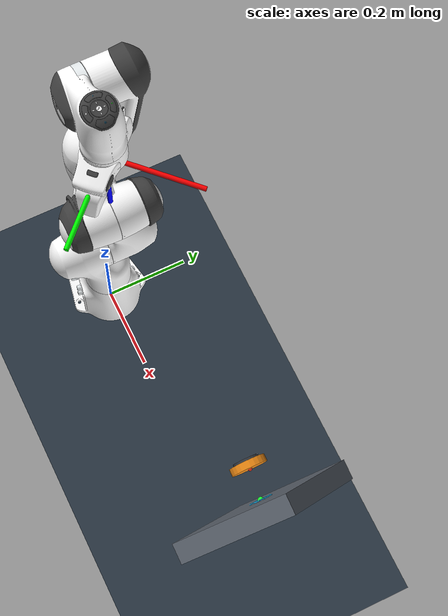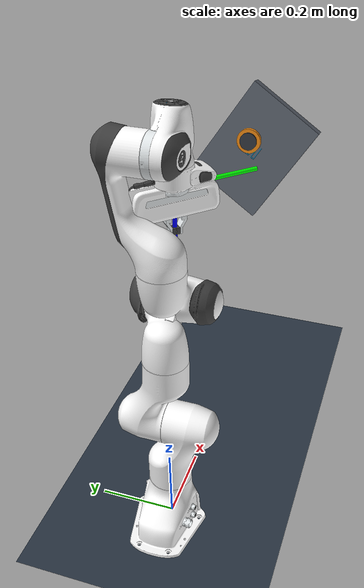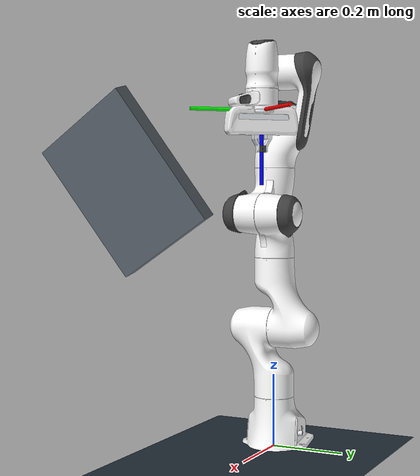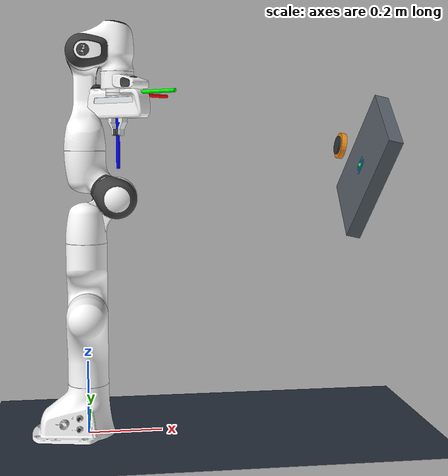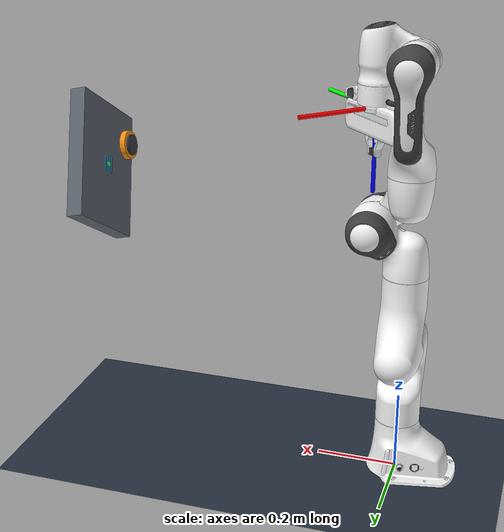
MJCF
<mujoco model="panda polishing scene">
  <include file="panda_pos.xml"/>

  <statistic center="0.45 0 0.55" extent="1.15"/>

  <visual>
    <headlight diffuse="0.7 0.7 0.7" ambient="0.35 0.35 0.35" specular="0.1 0.1 0.1"/>
    <rgba haze="0.15 0.25 0.35 1"/>
    <global azimuth="135" elevation="-18"/>
  </visual>

  <asset>
    <texture type="skybox" builtin="gradient" rgb1="0.35 0.5 0.7" rgb2="0.02 0.02 0.04"
             width="512" height="3072"/>
    <texture type="2d" name="polishing_ground" builtin="checker" mark="edge"
             rgb1="0.22 0.28 0.34" rgb2="0.10 0.13 0.17" markrgb="0.75 0.75 0.75"
             width="300" height="300"/>
    <material name="polishing_ground" texture="polishing_ground" texuniform="true"
              texrepeat="5 5" reflectance="0.15"/>
    <material name="workpiece_material" rgba="0.36 0.39 0.43 1" specular="0.4" shininess="0.35"/>
    <material name="pad_material" rgba="0.95 0.55 0.08 1" specular="0.15" shininess="0.2"/>
  </asset>

  <worldbody>
    <light pos="0.4 -0.4 1.6" dir="0.1 0.2 -1" directional="true"/>
    <geom name="floor" size="0 0 0.05" type="plane" material="polishing_ground"/>

    <!-- The workpiece local +Z axis is aligned with the settled tool axis.
         Its near face starts about 35 mm in front of the polishing pad. -->
    <body name="workpiece" pos="0.778535806 0.000004654 0.728871639"
          quat="0.603261195 0.218702044 0.746350103 0.176654665">
      <geom name="workpiece_geom" type="box" size="0.16 0.12 0.02"
            material="workpiece_material" friction="0.2 0.02 0.002"
            solref="0.004 1" solimp="0.95 0.99 0.001"/>
      <site name="polishing_center" pos="0 0 -0.0205" size="0.006"
            rgba="0.1 1 0.2 0.9" group="2"/>
      <!-- Default 40 x 30 mm serpentine polishing path.  These geoms are
           visual only; the controller generates the same path numerically. -->
      <geom name="trajectory_row_0" type="capsule" size="0.0012"
            fromto="-0.02 -0.015 -0.021 0.02 -0.015 -0.021"
            rgba="0.15 0.75 1 0.9" contype="0" conaffinity="0" group="2"/>
      <geom name="trajectory_turn_0" type="capsule" size="0.0012"
            fromto="0.02 -0.015 -0.021 0.02 -0.005 -0.021"
            rgba="0.15 0.75 1 0.9" contype="0" conaffinity="0" group="2"/>
      <geom name="trajectory_row_1" type="capsule" size="0.0012"
            fromto="0.02 -0.005 -0.021 -0.02 -0.005 -0.021"
            rgba="0.15 0.75 1 0.9" contype="0" conaffinity="0" group="2"/>
      <geom name="trajectory_turn_1" type="capsule" size="0.0012"
            fromto="-0.02 -0.005 -0.021 -0.02 0.005 -0.021"
            rgba="0.15 0.75 1 0.9" contype="0" conaffinity="0" group="2"/>
      <geom name="trajectory_row_2" type="capsule" size="0.0012"
            fromto="-0.02 0.005 -0.021 0.02 0.005 -0.021"
            rgba="0.15 0.75 1 0.9" contype="0" conaffinity="0" group="2"/>
      <geom name="trajectory_turn_2" type="capsule" size="0.0012"
            fromto="0.02 0.005 -0.021 0.02 0.015 -0.021"
            rgba="0.15 0.75 1 0.9" contype="0" conaffinity="0" group="2"/>
      <geom name="trajectory_row_3" type="capsule" size="0.0012"
            fromto="0.02 0.015 -0.021 -0.02 0.015 -0.021"
            rgba="0.15 0.75 1 0.9" contype="0" conaffinity="0" group="2"/>
    </body>

    <body name="polishing_tool" pos="0.688796086 0 0.788705734"
          quat="0.62880214 0.21269708 0.72478743 0.18452911">
      <freejoint name="polishing_tool_freejoint"/>
      <inertial pos="0 0 0.008" mass="0.22" diaginertia="0.00014 0.00014 0.00020"/>
      <geom name="tool_hub" type="cylinder" pos="0 0 0.005" size="0.025 0.005"
            rgba="0.20 0.22 0.25 1" contype="0" conaffinity="0"/>
      <geom name="polishing_pad" type="cylinder" pos="0 0 0.012" size="0.035 0.007"
            material="pad_material" friction="0.2 0.03 0.003"
            solref="0.015 1" solimp="0.90 0.97 0.003"/>
      <site name="pad_contact_center" pos="0 0 0.0195" size="0.004"
            rgba="1 0.2 0.1 0.9" group="2"/>
    </body>
  </worldbody>

  <equality>
    <weld name="tool_to_tcp" body1="polishing_tool" body2="ee_center_body"
          relpose="0 0 0 1 0 0 0"
          solref="0.002 1" solimp="0.99 0.999 0.0001"/>
  </equality>

  <keyframe>
    <key name="polishing_home"
         qpos="0 0 0 -1.57079 0 3.0 -1.7853 0.04 0.04 0.688796086 0 0.788705734 0.62880214 0.21269708 0.72478743 0.18452911"
         ctrl="0 0 0 -1.57079 0 1.57079 -0.7853 255"/>
  </keyframe>
</mujoco>

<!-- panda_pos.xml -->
<mujoco model="panda">
  <compiler angle="radian" meshdir="assets" autolimits="true"/>

  <option integrator="implicitfast"/>

  <default>
    <default class="panda">
      <material specular="0.5" shininess="0.25"/>
      <joint armature="0.1" damping="1" axis="0 0 1" range="-2.8973 2.8973"/>
      <general dyntype="none" biastype="affine" ctrlrange="-2.8973 2.8973" forcerange="-87 87"/>
      <default class="finger">
        <joint axis="0 1 0" type="slide" range="0 0.04"/>
      </default>

      <default class="visual">
        <geom type="mesh" contype="0" conaffinity="0" group="2"/>
      </default>
      <default class="collision">
        <geom type="mesh" group="3"/>
        <default class="fingertip_pad_collision_1">
          <geom type="box" size="0.0085 0.004 0.0085" pos="0 0.0055 0.0445"/>
        </default>
        <default class="fingertip_pad_collision_2">
          <geom type="box" size="0.003 0.002 0.003" pos="0.0055 0.002 0.05"/>
        </default>
        <default class="fingertip_pad_collision_3">
          <geom type="box" size="0.003 0.002 0.003" pos="-0.0055 0.002 0.05"/>
        </default>
        <default class="fingertip_pad_collision_4">
          <geom type="box" size="0.003 0.002 0.0035" pos="0.0055 0.002 0.0395"/>
        </default>
        <default class="fingertip_pad_collision_5">
          <geom type="box" size="0.003 0.002 0.0035" pos="-0.0055 0.002 0.0395"/>
        </default>
      </default>
    </default>
  </default>

  <asset>
    <material class="panda" name="white" rgba="1 1 1 1"/>
    <material class="panda" name="off_white" rgba="0.901961 0.921569 0.929412 1"/>
    <material class="panda" name="black" rgba="0.25 0.25 0.25 1"/>
    <material class="panda" name="green" rgba="0 1 0 1"/>
    <material class="panda" name="light_blue" rgba="0.039216 0.541176 0.780392 1"/>

    <!-- Collision meshes -->
    <mesh name="link0_c" file="link0.stl"/>
    <mesh name="link1_c" file="link1.stl"/>
    <mesh name="link2_c" file="link2.stl"/>
    <mesh name="link3_c" file="link3.stl"/>
    <mesh name="link4_c" file="link4.stl"/>
    <mesh name="link5_c0" file="link5_collision_0.obj"/>
    <mesh name="link5_c1" file="link5_collision_1.obj"/>
    <mesh name="link5_c2" file="link5_collision_2.obj"/>
    <mesh name="link6_c" file="link6.stl"/>
    <mesh name="link7_c" file="link7.stl"/>
    <mesh name="hand_c" file="hand.stl"/>

    <!-- Visual meshes -->
    <mesh file="link0_0.obj"/>
    <mesh file="link0_1.obj"/>
    <mesh file="link0_2.obj"/>
    <mesh file="link0_3.obj"/>
    <mesh file="link0_4.obj"/>
    <mesh file="link0_5.obj"/>
    <mesh file="link0_7.obj"/>
    <mesh file="link0_8.obj"/>
    <mesh file="link0_9.obj"/>
    <mesh file="link0_10.obj"/>
    <mesh file="link0_11.obj"/>
    <mesh file="link1.obj"/>
    <mesh file="link2.obj"/>
    <mesh file="link3_0.obj"/>
    <mesh file="link3_1.obj"/>
    <mesh file="link3_2.obj"/>
    <mesh file="link3_3.obj"/>
    <mesh file="link4_0.obj"/>
    <mesh file="link4_1.obj"/>
    <mesh file="link4_2.obj"/>
    <mesh file="link4_3.obj"/>
    <mesh file="link5_0.obj"/>
    <mesh file="link5_1.obj"/>
    <mesh file="link5_2.obj"/>
    <mesh file="link6_0.obj"/>
    <mesh file="link6_1.obj"/>
    <mesh file="link6_2.obj"/>
    <mesh file="link6_3.obj"/>
    <mesh file="link6_4.obj"/>
    <mesh file="link6_5.obj"/>
    <mesh file="link6_6.obj"/>
    <mesh file="link6_7.obj"/>
    <mesh file="link6_8.obj"/>
    <mesh file="link6_9.obj"/>
    <mesh file="link6_10.obj"/>
    <mesh file="link6_11.obj"/>
    <mesh file="link6_12.obj"/>
    <mesh file="link6_13.obj"/>
    <mesh file="link6_14.obj"/>
    <mesh file="link6_15.obj"/>
    <mesh file="link6_16.obj"/>
    <mesh file="link7_0.obj"/>
    <mesh file="link7_1.obj"/>
    <mesh file="link7_2.obj"/>
    <mesh file="link7_3.obj"/>
    <mesh file="link7_4.obj"/>
    <mesh file="link7_5.obj"/>
    <mesh file="link7_6.obj"/>
    <mesh file="link7_7.obj"/>
    <mesh file="hand_0.obj"/>
    <mesh file="hand_1.obj"/>
    <mesh file="hand_2.obj"/>
    <mesh file="hand_3.obj"/>
    <mesh file="hand_4.obj"/>
    <mesh file="finger_0.obj"/>
    <mesh file="finger_1.obj"/>
  </asset>

  <worldbody>
    <light name="top" pos="0 0 2" mode="trackcom"/>
    <body name="link0" childclass="panda">
      <inertial mass="0.629769" pos="-0.041018 -0.00014 0.049974"
        fullinertia="0.00315 0.00388 0.004285 8.2904e-7 0.00015 8.2299e-6"/>
      <geom mesh="link0_0" material="off_white" class="visual"/>
      <geom mesh="link0_1" material="black" class="visual"/>
      <geom mesh="link0_2" material="off_white" class="visual"/>
      <geom mesh="link0_3" material="black" class="visual"/>
      <geom mesh="link0_4" material="off_white" class="visual"/>
      <geom mesh="link0_5" material="black" class="visual"/>
      <geom mesh="link0_7" material="white" class="visual"/>
      <geom mesh="link0_8" material="white" class="visual"/>
      <geom mesh="link0_9" material="black" class="visual"/>
      <geom mesh="link0_10" material="off_white" class="visual"/>
      <geom mesh="link0_11" material="white" class="visual"/>
      <geom mesh="link0_c" class="collision"/>
      <body name="link1" pos="0 0 0.333">
        <inertial mass="4.970684" pos="0.003875 0.002081 -0.04762"
          fullinertia="0.70337 0.70661 0.0091170 -0.00013900 0.0067720 0.019169"/>
        <joint name="joint1"/>
        <geom material="white" mesh="link1" class="visual"/>
        <geom mesh="link1_c" class="collision"/>
        <body name="link2" quat="1 -1 0 0">
          <inertial mass="0.646926" pos="-0.003141 -0.02872 0.003495"
            fullinertia="0.0079620 2.8110e-2 2.5995e-2 -3.925e-3 1.0254e-2 7.04e-4"/>
          <joint name="joint2" range="-1.7628 1.7628"/>
          <geom material="white" mesh="link2" class="visual"/>
          <geom mesh="link2_c" class="collision"/>
          <body name="link3" pos="0 -0.316 0" quat="1 1 0 0">
            <joint name="joint3"/>
            <inertial mass="3.228604" pos="2.7518e-2 3.9252e-2 -6.6502e-2"
              fullinertia="3.7242e-2 3.6155e-2 1.083e-2 -4.761e-3 -1.1396e-2 -1.2805e-2"/>
            <geom mesh="link3_0" material="white" class="visual"/>
            <geom mesh="link3_1" material="white" class="visual"/>
            <geom mesh="link3_2" material="white" class="visual"/>
            <geom mesh="link3_3" material="black" class="visual"/>
            <geom mesh="link3_c" class="collision"/>
            <body name="link4" pos="0.0825 0 0" quat="1 1 0 0">
              <inertial mass="3.587895" pos="-5.317e-2 1.04419e-1 2.7454e-2"
                fullinertia="2.5853e-2 1.9552e-2 2.8323e-2 7.796e-3 -1.332e-3 8.641e-3"/>
              <joint name="joint4" range="-3.0718 -0.0698"/>
              <geom mesh="link4_0" material="white" class="visual"/>
              <geom mesh="link4_1" material="white" class="visual"/>
              <geom mesh="link4_2" material="black" class="visual"/>
              <geom mesh="link4_3" material="white" class="visual"/>
              <geom mesh="link4_c" class="collision"/>
              <body name="link5" pos="-0.0825 0.384 0" quat="1 -1 0 0">
                <inertial mass="1.225946" pos="-1.1953e-2 4.1065e-2 -3.8437e-2"
                  fullinertia="3.5549e-2 2.9474e-2 8.627e-3 -2.117e-3 -4.037e-3 2.29e-4"/>
                <joint name="joint5"/>
                <geom mesh="link5_0" material="black" class="visual"/>
                <geom mesh="link5_1" material="white" class="visual"/>
                <geom mesh="link5_2" material="white" class="visual"/>
                <geom mesh="link5_c0" class="collision"/>
                <geom mesh="link5_c1" class="collision"/>
                <geom mesh="link5_c2" class="collision"/>
                <body name="link6" quat="1 1 0 0">
                  <inertial mass="1.666555" pos="6.0149e-2 -1.4117e-2 -1.0517e-2"
                    fullinertia="1.964e-3 4.354e-3 5.433e-3 1.09e-4 -1.158e-3 3.41e-4"/>
                  <joint name="joint6" range="-0.0175 3.7525"/>
                  <geom mesh="link6_0" material="off_white" class="visual"/>
                  <geom mesh="link6_1" material="white" class="visual"/>
                  <geom mesh="link6_2" material="black" class="visual"/>
                  <geom mesh="link6_3" material="white" class="visual"/>
                  <geom mesh="link6_4" material="white" class="visual"/>
                  <geom mesh="link6_5" material="white" class="visual"/>
                  <geom mesh="link6_6" material="white" class="visual"/>
                  <geom mesh="link6_7" material="light_blue" class="visual"/>
                  <geom mesh="link6_8" material="light_blue" class="visual"/>
                  <geom mesh="link6_9" material="black" class="visual"/>
                  <geom mesh="link6_10" material="black" class="visual"/>
                  <geom mesh="link6_11" material="white" class="visual"/>
                  <geom mesh="link6_12" material="green" class="visual"/>
                  <geom mesh="link6_13" material="white" class="visual"/>
                  <geom mesh="link6_14" material="black" class="visual"/>
                  <geom mesh="link6_15" material="black" class="visual"/>
                  <geom mesh="link6_16" material="white" class="visual"/>
                  <geom mesh="link6_c" class="collision"/>
                  <body name="link7" pos="0.088 0 0" quat="1 1 0 0">
                    <inertial mass="7.35522e-01" pos="1.0517e-2 -4.252e-3 6.1597e-2"
                      fullinertia="1.2516e-2 1.0027e-2 4.815e-3 -4.28e-4 -1.196e-3 -7.41e-4"/>
                    <joint name="joint7"/>
                    <geom mesh="link7_0" material="white" class="visual"/>
                    <geom mesh="link7_1" material="black" class="visual"/>
                    <geom mesh="link7_2" material="black" class="visual"/>
                    <geom mesh="link7_3" material="black" class="visual"/>
                    <geom mesh="link7_4" material="black" class="visual"/>
                    <geom mesh="link7_5" material="black" class="visual"/>
                    <geom mesh="link7_6" material="black" class="visual"/>
                    <geom mesh="link7_7" material="white" class="visual"/>
                    <geom mesh="link7_c" class="collision"/>
                    <body name="hand" pos="0 0 0.107" quat="0.9238795 0 0 -0.3826834">
                      <inertial mass="0.73" pos="-0.01 0 0.03" diaginertia="0.001 0.0025 0.0017"/>
                      <geom mesh="hand_0" material="off_white" class="visual"/>
                      <geom mesh="hand_1" material="black" class="visual"/>
                      <geom mesh="hand_2" material="black" class="visual"/>
                      <geom mesh="hand_3" material="white" class="visual"/>
                      <geom mesh="hand_4" material="off_white" class="visual"/>
                      <geom mesh="hand_c" class="collision"/>
                      <site name="ee_ft_site" pos="0 0 0.105" size="0.008"
                            rgba="1 0.5 0 0.5" group="3"/>

                      <!-- refer to the panda_grasptarget in panda.urdf in panda_gym -->
                        <body name="ee_center_body" pos="0 0 0.105" quat="1 0 0 0">
                            <site name='ee_center_site' size="0.01" group="3"/>
                        </body>
                        <body name="ee_center_quat" pos="0 0 0">
                          <geom name="ee_x" type="cylinder" size="0.005" fromto="0 0 0 0.2 0 0" rgba="1 0 0 1" contype="0"
                                conaffinity="0"/>
                          <geom name="ee_y" type="cylinder" size="0.005" fromto="0 0 0 0 0.2 0" rgba="0 1 0 1" contype="0"
                                conaffinity="0"/>
                          <geom name="ee_z" type="cylinder" size="0.005" fromto="0 0 0 0 0 0.2" rgba="0 0 1 1" contype="0"
                                conaffinity="0"/>
                        </body>

                      <body name="left_finger" pos="0 0 0.0584">
                        <inertial mass="0.015" pos="0 0 0" diaginertia="2.375e-6 2.375e-6 7.5e-7"/>
                        <joint name="finger_joint1" class="finger"/>
                        <geom mesh="finger_0" material="off_white" class="visual"/>
                        <geom mesh="finger_1" material="black" class="visual"/>
                        <geom mesh="finger_0" class="collision"/>
                        <geom class="fingertip_pad_collision_1"/>
                        <geom class="fingertip_pad_collision_2"/>
                        <geom class="fingertip_pad_collision_3"/>
                        <geom class="fingertip_pad_collision_4"/>
                        <geom class="fingertip_pad_collision_5"/>
                      </body>
                      <body name="right_finger" pos="0 0 0.0584" quat="0 0 0 1">
                        <inertial mass="0.015" pos="0 0 0" diaginertia="2.375e-6 2.375e-6 7.5e-7"/>
                        <joint name="finger_joint2" class="finger"/>
                        <geom mesh="finger_0" material="off_white" class="visual"/>
                        <geom mesh="finger_1" material="black" class="visual"/>
                        <geom mesh="finger_0" class="collision"/>
                        <geom class="fingertip_pad_collision_1"/>
                        <geom class="fingertip_pad_collision_2"/>
                        <geom class="fingertip_pad_collision_3"/>
                        <geom class="fingertip_pad_collision_4"/>
                        <geom class="fingertip_pad_collision_5"/>
                      </body>
                    </body>
                  </body>
                </body>
              </body>
            </body>
          </body>
        </body>
      </body>
    </body>
  </worldbody>

  <tendon>
    <fixed name="split">
      <joint joint="finger_joint1" coef="0.5"/>
      <joint joint="finger_joint2" coef="0.5"/>
    </fixed>
  </tendon>

  <equality>
    <joint joint1="finger_joint1" joint2="finger_joint2" solimp="0.95 0.99 0.001" solref="0.005 1"/>
  </equality>

  <actuator>
    <position name="joint1_pos" joint="joint1" kp="800" kv="80" ctrlrange="-6.28 6.28" gear="1.0"/>
    <position name="joint2_pos" joint="joint2" kp="800" kv="80" ctrlrange="-6.28 6.28" gear="1.0"/>
    <position name="joint3_pos" joint="joint3" kp="800" kv="80" ctrlrange="-6.28 6.28" gear="1.0"/>
    <position name="joint4_pos" joint="joint4" kp="800" kv="80" ctrlrange="-6.28 6.28" gear="1.0"/>
    <position name="joint5_pos" joint="joint5" kp="800" kv="80" ctrlrange="-6.28 6.28" gear="1.0"/>
    <position name="joint6_pos" joint="joint6" kp="800" kv="80" ctrlrange="-6.28 6.28" gear="1.0"/>
    <position name="joint7_pos" joint="joint7" kp="800" kv="80" ctrlrange="-6.28 6.28" gear="1.0"/>

    <!-- 保留抓手控制 -->
    <general class="panda" name="actuator8" tendon="split"
             forcerange="-100 100" ctrlrange="0 255"
             gainprm="0.01568627451 0" biasprm="0 -100 -10"/>
  </actuator>

  <!-- MuJoCo represents a six-axis F/T sensor as one 3-axis force sensor
       plus one 3-axis torque sensor.  Both outputs use ee_ft_site's frame. -->
  <sensor>
    <force name="ee_force" site="ee_ft_site"/>
    <torque name="ee_torque" site="ee_ft_site"/>
  </sensor>

  <keyframe>
    <key name="home" qpos="0 0 0 -1.57079 0 3.0 -1.7853 0.04 0.04" ctrl="0 0 0 -1.57079 0 1.57079 -0.7853 255"/>
  </keyframe>

  <contact>
    <exclude body1="link0" body2="link1"/>
  </contact>
</mujoco>
